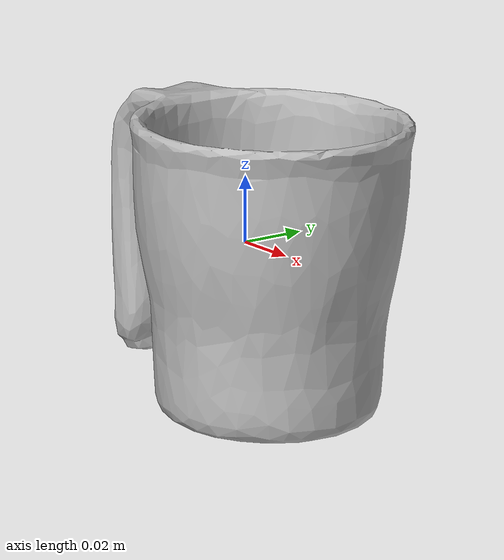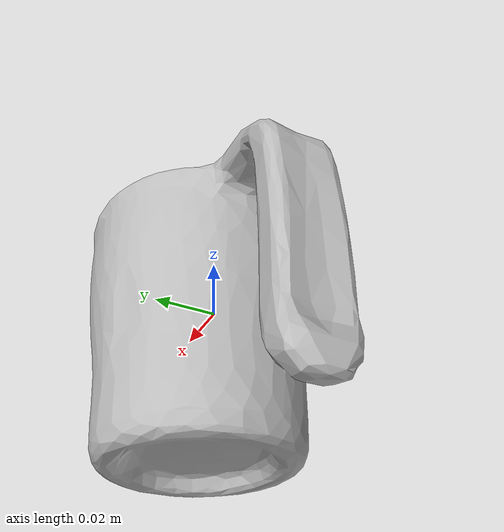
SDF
<?xml version="1.0" ?>
<sdf version="1.4">
    <model name='denden_mug_mountain'>
      <link name='link'>
        <pose>0 0 0 0 0 0</pose>
        <inertial>
          <mass>0.1</mass>
          <inertia>
            <ixx>0.0001222</ixx>
            <ixy>0</ixy>
            <ixz>0</ixz>
            <iyy>0.000174</iyy>
            <iyz>0</iyz>
            <izz>0.000161</izz>
          </inertia>
        </inertial>
        <visual name='denden_mug_mountain'>
          <pose>0.0 0.0 0.0 0 0 0</pose>
          <geometry>
            <mesh>
              <uri>model://denden_mug_mountain/meshes/denden_mug_mountain.dae</uri>
            </mesh>
          </geometry>

        </visual>
        <collision name='denden_mug_mountain'>
          <pose>0.0 0.0 0.0 0 0 0</pose>
          <geometry>
            <mesh>
              <uri>model://denden_mug_mountain/meshes/denden_mug_mountain.dae</uri>
            </mesh>
          </geometry>
          <max_contacts>10</max_contacts>
          <surface>
            <bounce>
              <restitution_coefficient>0.2</restitution_coefficient>
              <threshold>0</threshold>
            </bounce>
            <friction>
              <ode/>
            </friction>
            <contact>
              <ode/>
            </contact>
          </surface>
        </collision>
        <velocity_decay>
          <linear>0</linear>
          <angular>0</angular>
        </velocity_decay>
        <self_collide>0</self_collide>
        <kinematic>0</kinematic>
        <gravity>1</gravity>
      </link>
      <static>0</static>
    </model>
</sdf>
